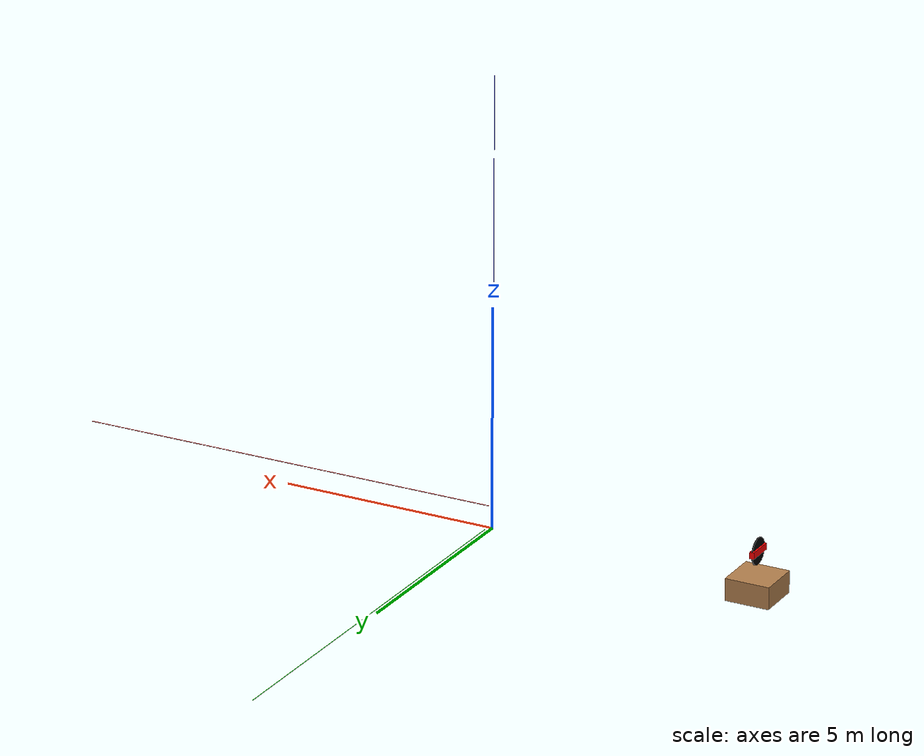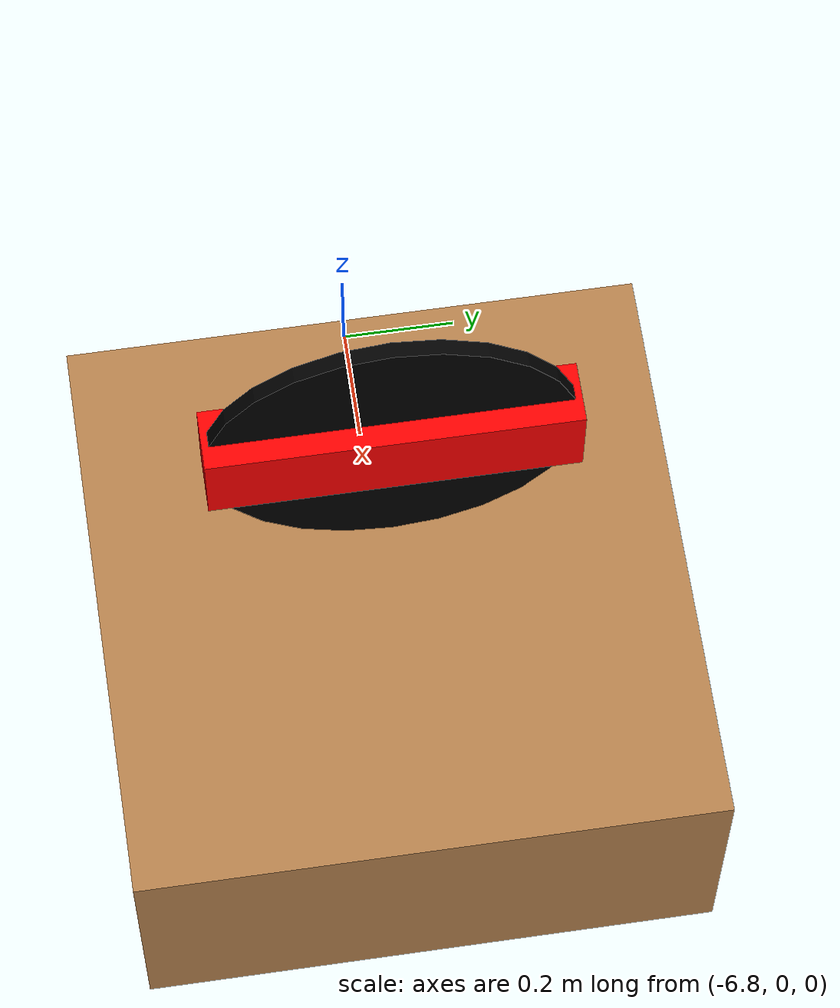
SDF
<sdf version="1.9">
 <world name="iris_flight_testing">
  <physics name="1ms" type="ignore">
   <max_step_size>0.001</max_step_size>
   <real_time_factor>1.0</real_time_factor>
  </physics>
  <plugin filename="gz-sim-physics-system" name="gz::sim::systems::Physics"/>
  <plugin filename="gz-sim-sensors-system" name="gz::sim::systems::Sensors">
   <render_engine>ogre2</render_engine>
  </plugin>
  <plugin filename="gz-sim-user-commands-system" name="gz::sim::systems::UserCommands"/>
  <plugin filename="gz-sim-scene-broadcaster-system" name="gz::sim::systems::SceneBroadcaster"/>
  <plugin filename="gz-sim-imu-system" name="gz::sim::systems::Imu"/>
  <plugin filename="gz-sim-navsat-system" name="gz::sim::systems::NavSat"/>
  <scene><ambient>1.0 1.0 1.0</ambient><background>0.8 0.8 0.8</background></scene>
  <spherical_coordinates>
   <latitude_deg>-35.363262</latitude_deg>
   <longitude_deg>149.165237</longitude_deg>
   <elevation>584</elevation>
   <heading_deg>0</heading_deg>
   <surface_model>EARTH_WGS84</surface_model>
  </spherical_coordinates>
  <light type="directional" name="sun">
   <pose>0 0 10 0 0 0</pose>
   <diffuse>0.8 0.8 0.8 1</diffuse>
   <specular>0.8 0.8 0.8 1</specular>
   <attenuation>
    <range>1000</range>
    <constant>0.9</constant>
    <linear>0.01</linear>
    <quadratic>0.001</quadratic>
   </attenuation>
   <direction>-0.5 0.1 -0.9</direction>
  </light>
  <model name="axes">
   <static>1</static>
   <link name="link">
    <visual name="r">
     <cast_shadows>0</cast_shadows>
     <pose>5 0 0.5 0 0 0</pose>
     <geometry><box><size>10 0.01 0.01</size></box></geometry>
     <material>
      <ambient>1 0 0 0.8</ambient>
      <diffuse>1 0 0 0.8</diffuse>
      <emissive>1 0 0 0.8</emissive>
      <specular>0.5 0.5 0.5 0.8</specular>
     </material>
    </visual>
    <visual name="g">
     <cast_shadows>0</cast_shadows>
     <pose>0 5 0.1 0 0 0</pose>
     <geometry><box><size>0.01 10 0.01</size></box></geometry>
     <material>
      <ambient>0 1 0 0.8</ambient>
      <diffuse>0 1 0 0.8</diffuse>
      <emissive>0 1 0 0.8</emissive>
      <specular>0.5 0.5 0.5 0.8</specular>
     </material>
    </visual>
    <visual name="b">
     <cast_shadows>0</cast_shadows>
     <pose>0 0 5.1 0 0 0</pose>
     <geometry><box><size>0.01 0.01 10</size></box></geometry>
     <material>
      <ambient>0 0 1 0.8</ambient>
      <diffuse>0 0 1 0.8</diffuse>
      <emissive>0 0 1 0.8</emissive>
      <specular>0.5 0.5 0.5 0.8</specular>
     </material>
    </visual>
    <sensor name="navsat_sensor" type="navsat"><always_on>1</always_on><update_rate>1</update_rate></sensor>
   </link>
  </model>
  <model name="dropoff_table">
   <static>true</static>
   <pose>-6.2 0 0 0 0 1.5708</pose>
   <link name="link">
    <visual name="visual">
     <geometry><box><size>1 1 0.5</size></box></geometry>
     <material>
      <ambient>0.7 0.5 0.3 1</ambient>
      <diffuse>0.7 0.5 0.3 1</diffuse>
      <specular>0.1 0.1 0.1 1</specular>
      <emissive>0 0 0 1</emissive>
     </material>
    </visual>
    <collision name="collision">
     <geometry><box><size>1 1 0.5</size></box></geometry>
     <surface><friction><ode><mu>1</mu><mu2>1</mu2></ode></friction></surface>
    </collision>
   </link>
  </model>
  <model name="hoop">
   <static>false</static>
   <pose>-6.2 0 0.775 0 0 1.5708</pose>
   <link name="link">
    <visual name="hoop_visual_black">
     <pose>0 0 0 1.5708 0 0</pose>
     <geometry><cylinder><radius>0.3</radius><length>0.0254</length></cylinder></geometry>
     <material>
      <ambient>0 0 0 1</ambient>
      <diffuse>0 0 0 1</diffuse>
      <specular>0.1 0.1 0.1 1</specular>
      <emissive>0 0 0 1</emissive>
     </material>
    </visual>
    <visual name="hoop_visual_red_top_half">
     <pose>0 0 0.005 0 0 1.5708</pose>
     <geometry><box><size>0.1 0.6 0.15</size></box></geometry>
     <material>
      <ambient>1 0 0 1</ambient>
      <diffuse>1 0 0 1</diffuse>
      <specular>0.1 0.1 0.1 1</specular>
      <emissive>0 0 0 1</emissive>
     </material>
    </visual>
    <collision name="hoop_collision">
     <pose>0 0 0 1.5708 0 0</pose>
     <geometry><cylinder><radius>0.3</radius><length>0.05</length></cylinder></geometry>
     <surface><friction><ode><mu>0.1</mu><mu2>0.1</mu2></ode></friction></surface>
    </collision>
   </link>
  </model>
 </world>
</sdf>
